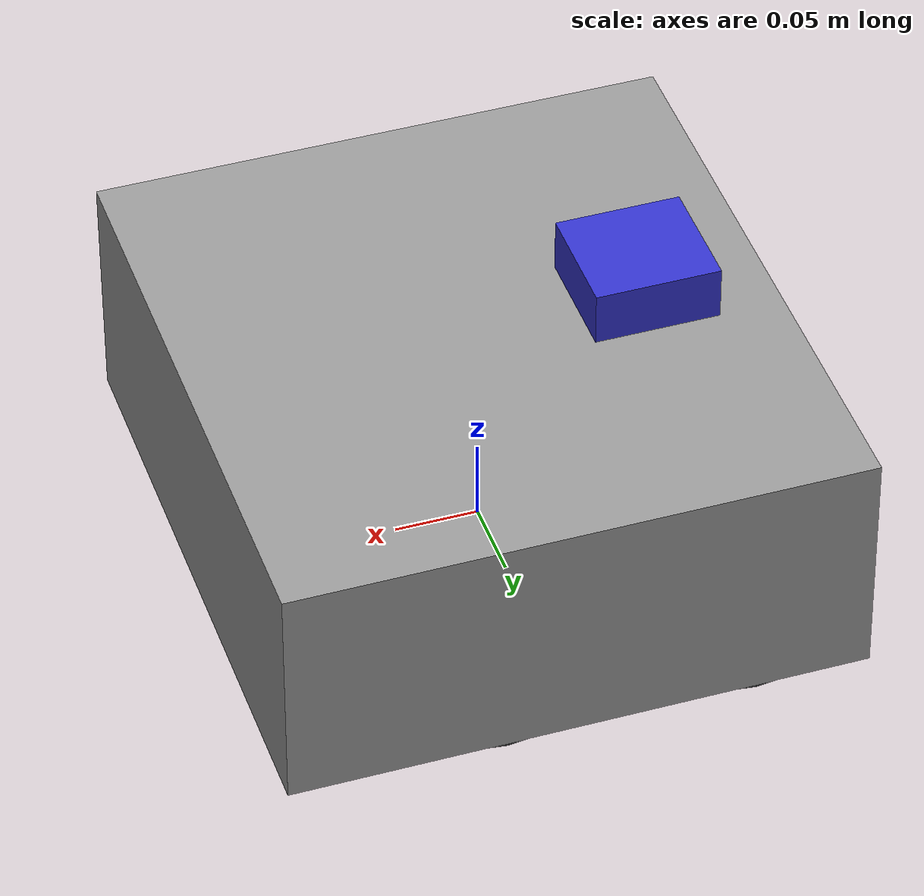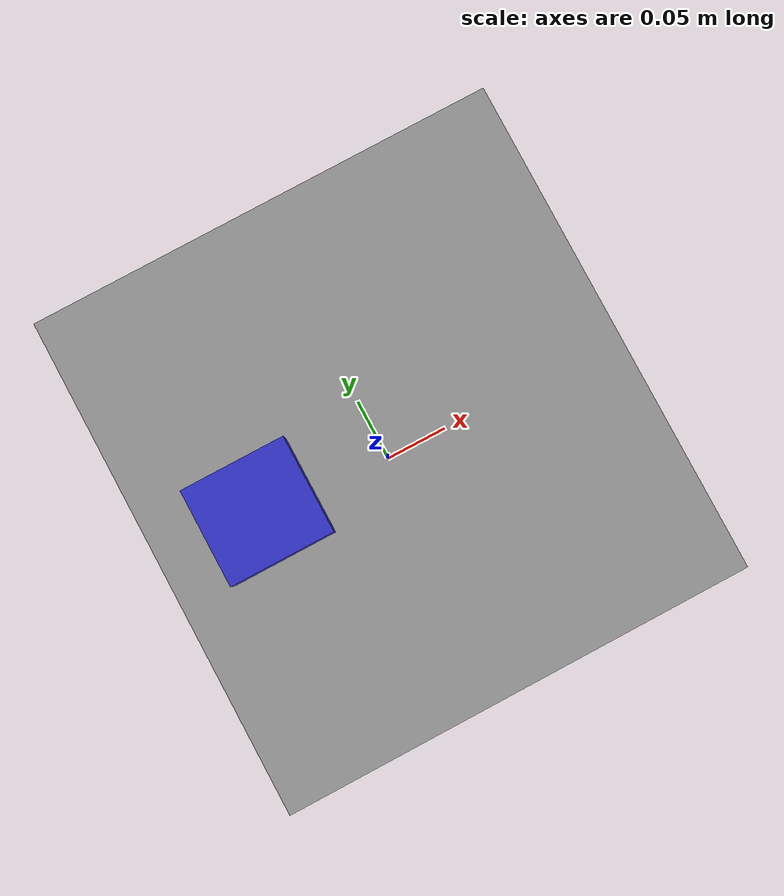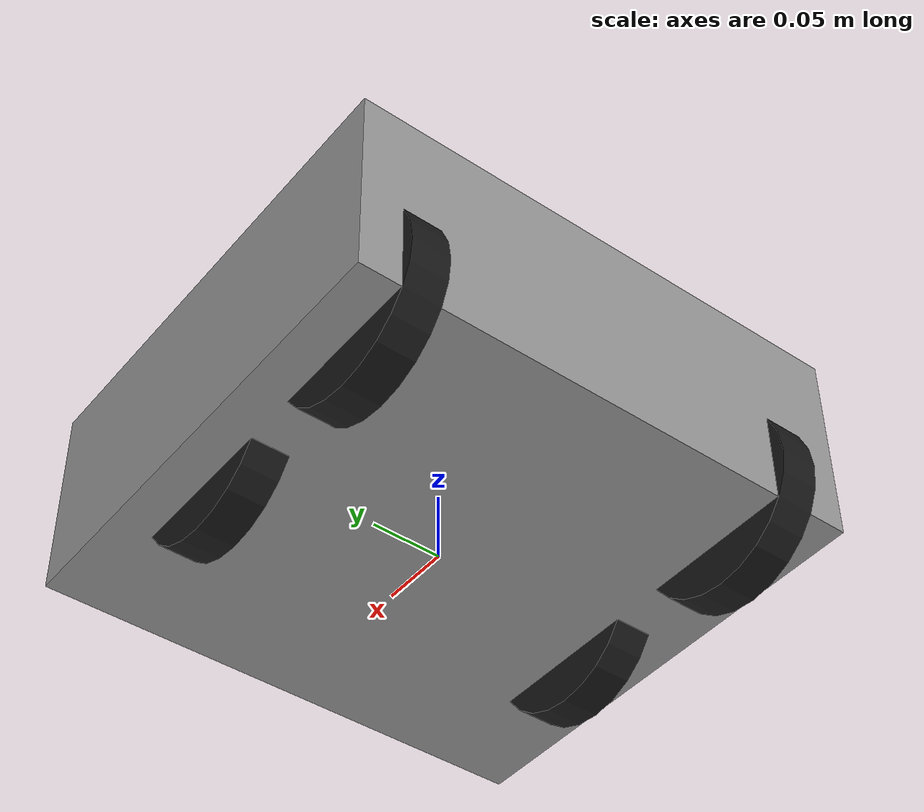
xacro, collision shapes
<?xml version="1.0"?>
<robot xmlns:xacro="http://www.ros.org/wiki/xacro" name="sumo">
  <link name="base_footprint">
  <origin xyz="0.0 0.0 0.0"/>

  </link>

  <link name="base_link">
    <visual>
      <geometry>
        <mesh filename="file:///home/wateen/Desktop/sumo_robot/install/sumo/share/sumo/meshes/blender frame trail 1.stl" scale="0.001 0.001 0.001"/>
      </geometry>
      <material name="gray">
        <color rgba="0.6 0.6 0.6 1"/>
      </material>
    </visual>

    <collision>
      <geometry>
        <box size="0.345 0.37 0.145"/>
      </geometry>
    </collision>

   <inertial>
    <mass value="8.20158"/>
    <inertia ixx="0.0902089" ixy="0.0000740" ixz="0.0071159" iyy="0.0993226" iyz="0.0000221" izz="0.1666919"/>
  </inertial>

  </link>

  <joint name="base_footprint_link_joint" type="fixed">
    <parent link="base_footprint"/>
    <child link="base_link"/>
    <origin xyz="0.0 0.0 0.07"/>

  </joint>

  <link name="rear_left_wheel_link">
    <visual>
      <origin rpy="0.0 3.14159 0.0"/>

      <geometry>
        <mesh filename="file:///home/wateen/Desktop/sumo_robot/install/sumo/share/sumo/meshes/motor B_L.stl" scale="0.001 0.001 0.001"/>
      </geometry>
      <material name="black">
        <color rgba="0.1 0.1 0.1 1"/>
      </material>
    </visual>
    <collision>
      <origin xyz="0 0 0" rpy="1.57075 0 0"/>
      <geometry>
          <cylinder radius="0.065" length="0.027"/>
      </geometry>
    </collision>
    <inertial>
      <origin xyz="0 0 0"/>
      <mass value="1.0"/>
      <inertia ixx="0.01" ixy="0" ixz="0" iyy="0.01" iyz="0" izz="0.01"/>
    </inertial>
  </link>

  <joint name="rear_left_wheel_joint" type="continuous">
    <parent link="base_link"/>
    <child link="rear_left_wheel_link"/>
    <origin xyz="-0.1166 0.142 -0.04" rpy="0 0 0"/>
    <axis xyz="0 1 0"/>
  </joint>

  <link name="rear_right_wheel_link">
    <visual>
    <origin rpy="3.1415 -3.1415 0.0"/>
      <geometry>
        <mesh filename="file:///home/wateen/Desktop/sumo_robot/install/sumo/share/sumo/meshes/motor B_R.stl" scale="0.001 0.001 0.001"/>
      </geometry>
      <material name="black">
        <color rgba="0.1 0.1 0.1 1"/>
      </material>
    </visual>
    <collision>
      <origin xyz="0 0 0" rpy="1.57075 0 0"/>
      <geometry>
          <cylinder radius="0.065" length="0.027"/>
      </geometry>
    </collision>
    <inertial>
      <origin xyz="0 0 0"/>
      <mass value="1.0"/>
      <inertia ixx="0.01" ixy="0" ixz="0" iyy="0.01" iyz="0" izz="0.01"/>
    </inertial>
  </link>

  <joint name="rear_right_wheel_joint" type="continuous">
    <parent link="base_link"/>
    <child link="rear_right_wheel_link"/>
    <origin xyz="-0.117 -0.1425 -0.04" rpy="0 0 0"/>
    <axis xyz="0 1 0"/>
  </joint>

  <link name="front_left_wheel_link">
    <visual>
      <geometry>
        <mesh filename="file:///home/wateen/Desktop/sumo_robot/install/sumo/share/sumo/meshes/MOTOR-FL.stl" scale="0.001 0.001 0.001"/>
      </geometry>
      <material name="black">
        <color rgba="0.1 0.1 0.1 1"/>
      </material>
    </visual>
    <collision>
      <origin xyz="0 0 0" rpy="1.57075 0 0"/>
      <geometry>
          <cylinder radius="0.065" length="0.027"/>
      </geometry>
    </collision>
    <inertial>
      <origin xyz="0 0 0"/>
      <mass value="1.0"/>
      <inertia ixx="0.01" ixy="0" ixz="0" iyy="0.01" iyz="0" izz="0.01"/>
    </inertial>
  </link>

  <joint name="front_left_wheel_joint" type="continuous">
    <parent link="base_link"/>
    <child link="front_left_wheel_link"/>
    <origin xyz="0.034 0.142 -0.04" rpy="0 0 0"/>
    <axis xyz="0 1 0"/>
  </joint>

  <link name="front_right_wheel_link">
    <visual>
      <geometry>
        <mesh filename="file:///home/wateen/Desktop/sumo_robot/install/sumo/share/sumo/meshes/motor F_R.stl" scale="0.001 0.001 0.001"/>
      </geometry>
      <material name="black">
        <color rgba="0.1 0.1 0.1 1"/>
      </material>
    </visual>
    <collision>
      <origin xyz="0 0 0" rpy="1.57075 0 0"/>
      <geometry>
          <cylinder radius="0.065" length="0.027"/>
      </geometry>
    </collision>
    <inertial>
      <origin xyz="0 0 0"/>
      <mass value="1.0"/>
      <inertia ixx="0.01" ixy="0" ixz="0" iyy="0.01" iyz="0" izz="0.01"/>
    </inertial>
  </link>

  <joint name="front_right_wheel_joint" type="continuous">
    <parent link="base_link"/>
    <child link="front_right_wheel_link"/>
    <origin xyz="0.0335 -0.1425 -0.04" rpy="0 0 0"/>
    <axis xyz="0 1 0"/>
  </joint>

  <link name="lidar_mesh_link">

    <visual>
      <geometry>
        <mesh filename="file:///home/wateen/Desktop/sumo_robot/install/sumo/share/sumo/meshes/lidar blender trial1.stl" scale="0.001 0.001 0.001"/>
      </geometry>
      <material name="blue">
        <color rgba="0.2 0.2 0.8 1"/>
      </material>
    </visual>

    <collision>
      <geometry>
        <box size="0.075 0.07 0.063"/>
      </geometry>
    </collision>

    <inertial>
      <origin xyz="-0.07142 -0.06488 -0.09997"/>
      <mass value="0.2"/>
      <inertia ixx="0.0002" ixy="0" ixz="0" iyy="0.0002" iyz="0" izz="0.0002"/>
    </inertial>

  </link>

  <link name="lidar_link">

  </link>

  <joint name="lidar_link_joint" type="fixed">
  <parent link="lidar_mesh_link"/>
  <child link="lidar_link"/>

    <origin xyz="0.0 0.0 0.037"/>
  </joint>

  <joint name="lidar_mesh_joint" type="fixed">

    <parent link="base_link"/>
    <child link="lidar_mesh_link"/>

    <origin xyz="-0.096 0 0.0737" rpy="0 0 0"/>

  </joint>

  <link name="camera_link">

    <visual>
      <geometry>
        <mesh filename="file:///home/wateen/Desktop/sumo_robot/install/sumo/share/sumo/meshes/blender trial cam .stl" scale="0.001 0.001 0.001"/>
      </geometry>
      <material name="white">
        <color rgba="0.95 0.95 0.95 1"/>
      </material>
    </visual>

    <collision>
      <geometry>
        <box size="0.02 0.077 0.025"/>
      </geometry>
    </collision>

    <inertial>
      <origin xyz="-0.03889 -0.02314 -0.02598"/>
      <mass value="0.2"/>
      <inertia ixx="0.0002" ixy="0" ixz="0" iyy="0.0002" iyz="0" izz="0.0002"/>
    </inertial>

  </link>

  <joint name="camera_joint" type="fixed">

    <parent link="base_link"/>
    <child link="camera_link"/>

    <origin xyz="0.031 0 0.047" rpy="0 0 0"/>
  </joint>

  <link name="imu_link">
  </link>

  <joint name="imu_joint" type="fixed">
    <parent link="base_link"/>
    <child link="imu_link"/>
    <origin xyz="0 0 0" rpy="0 0 0"/>
  </joint>

<xacro:include filename="gazebo.xacro"/>
</robot>
